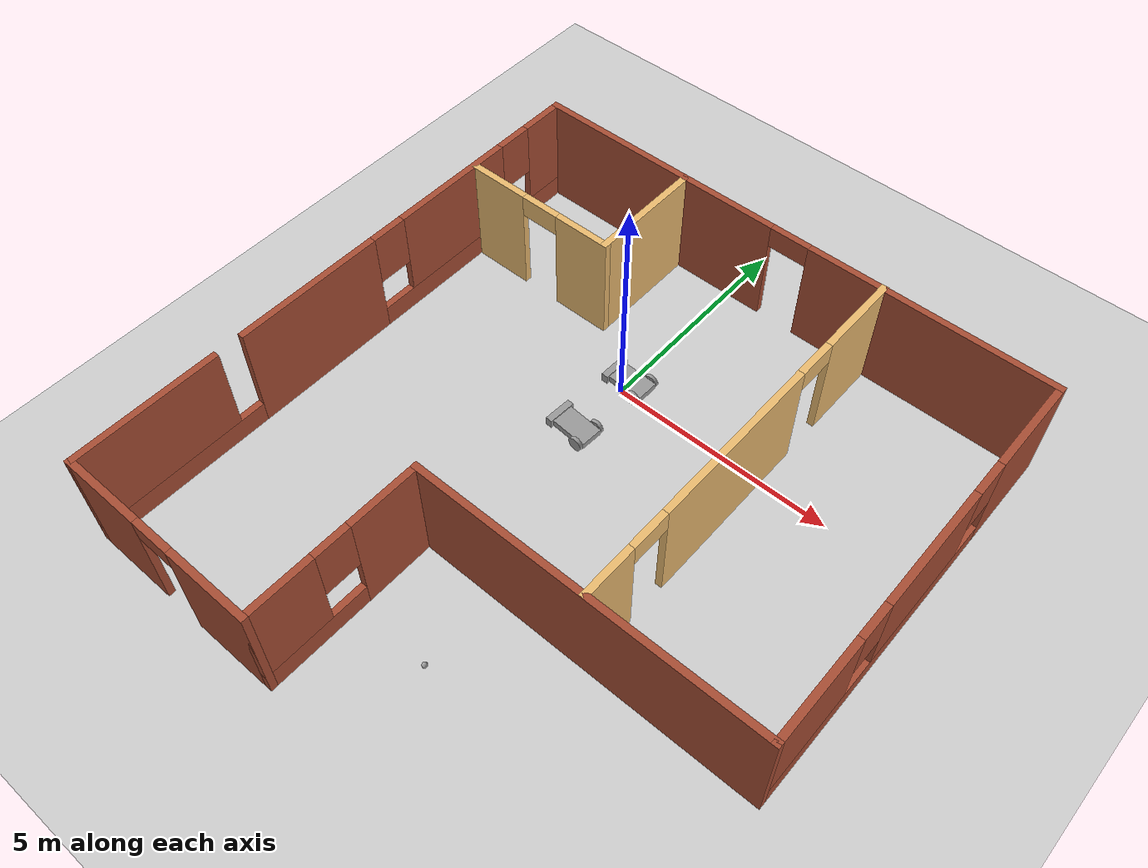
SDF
<sdf version="1.7">
 <world name="default">
  <plugin name="hello" filename="libhello.so"/>
  <light name="sun" type="directional">
   <pose>0 0 10 0 -0 0</pose>
   <diffuse>0.8 0.8 0.8 1</diffuse>
   <specular>0.2 0.2 0.2 1</specular>
   <attenuation>
    <range>1000</range>
    <constant>0.9</constant>
    <linear>0.01</linear>
    <quadratic>0.001</quadratic>
   </attenuation>
   <direction>-0.5 0.1 -0.9</direction>
   <spot><inner_angle>0</inner_angle><outer_angle>0</outer_angle><falloff>0</falloff></spot>
  </light>
  <model name="ground_plane">
   <static>1</static>
   <link name="link">
    <collision name="collision">
     <geometry><plane><normal>0 0 1</normal><size>100 100</size></plane></geometry>
     <surface>
      <contact><collide_bitmask>65535</collide_bitmask></contact>
      <friction><ode><mu>100</mu><mu2>50</mu2></ode></friction>
     </surface>
    </collision>
    <visual name="visual">
     <cast_shadows>0</cast_shadows>
     <geometry><plane><normal>0 0 1</normal><size>100 100</size></plane></geometry>
     <material>
      <script><uri>file://media/materials/scripts/gazebo.material</uri><name>Gazebo/Grey</name></script>
     </material>
    </visual>
   </link>
  </model>
  <gravity>0 0 -9.8</gravity>
  <magnetic_field>6e-06 2.3e-05 -4.2e-05</magnetic_field>
  <atmosphere type="adiabatic"/>
  <physics type="ode">
   <max_step_size>0.001</max_step_size>
   <real_time_factor>1</real_time_factor>
   <real_time_update_rate>1000</real_time_update_rate>
  </physics>
  <scene><ambient>0.4 0.4 0.4 1</ambient><background>0.7 0.7 0.7 1</background><shadows>1</shadows></scene>
  <spherical_coordinates>
   <surface_model>EARTH_WGS84</surface_model>
   <latitude_deg>0</latitude_deg>
   <longitude_deg>0</longitude_deg>
   <elevation>0</elevation>
   <heading_deg>0</heading_deg>
  </spherical_coordinates>
  <model name="building">
   <pose>1.07972 -2.64319 0 0 -0 0</pose>
   <link name="Wall_0">
    <pose>-6.1 1.91872 0 0 -0 1.5708</pose>
    <visual name="Wall_0_Visual_0">
     <pose>-2.80766 0 1.25 0 -0 0</pose>
     <geometry><box><size>3.38468 0.15 2.5</size></box></geometry>
     <material>
      <script><uri>file://media/materials/scripts/gazebo.material</uri><name>Gazebo/Bricks</name></script>
      <ambient>1 1 1 1</ambient>
     </material>
     <meta><layer>0</layer></meta>
    </visual>
    <collision name="Wall_0_Collision_0">
     <geometry><box><size>3.38468 0.15 2.5</size></box></geometry>
     <pose>-2.80766 0 1.25 0 -0 0</pose>
    </collision>
    <visual name="Wall_0_Visual_1">
     <pose>1.69234 0 0.25 0 -0 0</pose>
     <geometry><box><size>5.61532 0.15 0.5</size></box></geometry>
     <material>
      <script><uri>file://media/materials/scripts/gazebo.material</uri><name>Gazebo/Bricks</name></script>
      <ambient>1 1 1 1</ambient>
     </material>
     <meta><layer>0</layer></meta>
    </visual>
    <collision name="Wall_0_Collision_1">
     <geometry><box><size>5.61532 0.15 0.5</size></box></geometry>
     <pose>1.69234 0 0.25 0 -0 0</pose>
    </collision>
    <visual name="Wall_0_Visual_2">
     <pose>1.14475 0 1.5 0 -0 0</pose>
     <geometry><box><size>2.92014 0.15 2</size></box></geometry>
     <material>
      <script><uri>file://media/materials/scripts/gazebo.material</uri><name>Gazebo/Bricks</name></script>
      <ambient>1 1 1 1</ambient>
     </material>
     <meta><layer>0</layer></meta>
    </visual>
    <collision name="Wall_0_Collision_2">
     <geometry><box><size>2.92014 0.15 2</size></box></geometry>
     <pose>1.14475 0 1.5 0 -0 0</pose>
    </collision>
    <visual name="Wall_0_Visual_3">
     <pose>3.95241 0 1.5 0 -0 0</pose>
     <geometry><box><size>1.09518 0.15 2</size></box></geometry>
     <material>
      <script><uri>file://media/materials/scripts/gazebo.material</uri><name>Gazebo/Bricks</name></script>
      <ambient>1 1 1 1</ambient>
     </material>
     <meta><layer>0</layer></meta>
    </visual>
    <collision name="Wall_0_Collision_3">
     <geometry><box><size>1.09518 0.15 2</size></box></geometry>
     <pose>3.95241 0 1.5 0 -0 0</pose>
    </collision>
    <visual name="Wall_0_Visual_4">
     <pose>-0.71532 0 1.9 0 -0 0</pose>
     <geometry><box><size>0.8 0.15 1.2</size></box></geometry>
     <material>
      <script><uri>file://media/materials/scripts/gazebo.material</uri><name>Gazebo/Bricks</name></script>
      <ambient>1 1 1 1</ambient>
     </material>
     <meta><layer>0</layer></meta>
    </visual>
    <collision name="Wall_0_Collision_4">
     <geometry><box><size>0.8 0.15 1.2</size></box></geometry>
     <pose>-0.71532 0 1.9 0 -0 0</pose>
    </collision>
    <visual name="Wall_0_Visual_5">
     <pose>3.00482 0 1.9 0 -0 0</pose>
     <geometry><box><size>0.8 0.15 1.2</size></box></geometry>
     <material>
      <script><uri>file://media/materials/scripts/gazebo.material</uri><name>Gazebo/Bricks</name></script>
      <ambient>1 1 1 1</ambient>
     </material>
     <meta><layer>0</layer></meta>
    </visual>
    <collision name="Wall_0_Collision_5">
     <geometry><box><size>0.8 0.15 1.2</size></box></geometry>
     <pose>3.00482 0 1.9 0 -0 0</pose>
    </collision>
   </link>
   <link name="Wall_1">
    <collision name="Wall_1_Collision">
     <geometry><box><size>3.75 0.15 2.5</size></box></geometry>
     <pose>0 0 1.25 0 -0 0</pose>
    </collision>
    <visual name="Wall_1_Visual">
     <pose>0 0 1.25 0 -0 0</pose>
     <geometry><box><size>3.75 0.15 2.5</size></box></geometry>
     <material>
      <script><uri>file://media/materials/scripts/gazebo.material</uri><name>Gazebo/Bricks</name></script>
      <ambient>1 1 1 1</ambient>
     </material>
     <meta><layer>0</layer></meta>
    </visual>
    <pose>-4.3 6.34372 0 0 -0 0</pose>
   </link>
   <link name="Wall_16">
    <pose>-6.1 -4.43128 0 0 -0 -1.5708</pose>
    <visual name="Wall_16_Visual_0">
     <pose>0 0 0.25 0 -0 0</pose>
     <geometry><box><size>4 0.15 0.5</size></box></geometry>
     <material>
      <script><uri>file://media/materials/scripts/gazebo.material</uri><name>Gazebo/Bricks</name></script>
      <ambient>1 1 1 1</ambient>
     </material>
     <meta><layer>0</layer></meta>
    </visual>
    <collision name="Wall_16_Collision_0">
     <geometry><box><size>4 0.15 0.5</size></box></geometry>
     <pose>0 0 0.25 0 -0 0</pose>
    </collision>
    <visual name="Wall_16_Visual_1">
     <pose>0.35573 0 1.5 0 -0 0</pose>
     <geometry><box><size>3.28854 0.15 2</size></box></geometry>
     <material>
      <script><uri>file://media/materials/scripts/gazebo.material</uri><name>Gazebo/Bricks</name></script>
      <ambient>1 1 1 1</ambient>
     </material>
     <meta><layer>0</layer></meta>
    </visual>
    <collision name="Wall_16_Collision_1">
     <geometry><box><size>3.28854 0.15 2</size></box></geometry>
     <pose>0.35573 0 1.5 0 -0 0</pose>
    </collision>
   </link>
   <link name="Wall_17">
    <pose>-3.8 -6.35628 0 0 -0 0</pose>
    <visual name="Wall_17_Visual_0">
     <pose>-1.42127 0 1.25 0 -0 0</pose>
     <geometry><box><size>1.90746 0.15 2.5</size></box></geometry>
     <material>
      <script><uri>file://media/materials/scripts/gazebo.material</uri><name>Gazebo/Bricks</name></script>
      <ambient>1 1 1 1</ambient>
     </material>
     <meta><layer>0</layer></meta>
    </visual>
    <collision name="Wall_17_Collision_0">
     <geometry><box><size>1.90746 0.15 2.5</size></box></geometry>
     <pose>-1.42127 0 1.25 0 -0 0</pose>
    </collision>
    <visual name="Wall_17_Visual_1">
     <pose>1.40373 0 1.25 0 -0 0</pose>
     <geometry><box><size>1.94254 0.15 2.5</size></box></geometry>
     <material>
      <script><uri>file://media/materials/scripts/gazebo.material</uri><name>Gazebo/Bricks</name></script>
      <ambient>1 1 1 1</ambient>
     </material>
     <meta><layer>0</layer></meta>
    </visual>
    <collision name="Wall_17_Collision_1">
     <geometry><box><size>1.94254 0.15 2.5</size></box></geometry>
     <pose>1.40373 0 1.25 0 -0 0</pose>
    </collision>
    <visual name="Wall_17_Visual_2">
     <pose>-0.017539 0 2.25 0 -0 0</pose>
     <geometry><box><size>0.9 0.15 0.5</size></box></geometry>
     <material>
      <script><uri>file://media/materials/scripts/gazebo.material</uri><name>Gazebo/Bricks</name></script>
      <ambient>1 1 1 1</ambient>
     </material>
     <meta><layer>0</layer></meta>
    </visual>
    <collision name="Wall_17_Collision_2">
     <geometry><box><size>0.9 0.15 0.5</size></box></geometry>
     <pose>-0.017539 0 2.25 0 -0 0</pose>
    </collision>
   </link>
   <link name="Wall_19">
    <pose>2.3336 1.93128 0 0 -0 -1.5708</pose>
    <visual name="Wall_19_Visual_0">
     <pose>-3.52507 0 1.25 0 -0 0</pose>
     <geometry><box><size>1.94986 0.15 2.5</size></box></geometry>
     <material>
      <script><uri>file://media/materials/scripts/gazebo.material</uri><name>Gazebo/Grey</name></script>
      <ambient>0.913725 0.72549 0.431373 1</ambient>
     </material>
     <meta><layer>0</layer></meta>
    </visual>
    <collision name="Wall_19_Collision_0">
     <geometry><box><size>1.94986 0.15 2.5</size></box></geometry>
     <pose>-3.52507 0 1.25 0 -0 0</pose>
    </collision>
    <visual name="Wall_19_Visual_1">
     <pose>0.347076 0 1.25 0 -0 0</pose>
     <geometry><box><size>3.99444 0.15 2.5</size></box></geometry>
     <material>
      <script><uri>file://media/materials/scripts/gazebo.material</uri><name>Gazebo/Grey</name></script>
      <ambient>0.913725 0.72549 0.431373 1</ambient>
     </material>
     <meta><layer>0</layer></meta>
    </visual>
    <collision name="Wall_19_Collision_1">
     <geometry><box><size>3.99444 0.15 2.5</size></box></geometry>
     <pose>0.347076 0 1.25 0 -0 0</pose>
    </collision>
    <visual name="Wall_19_Visual_2">
     <pose>3.87215 0 1.25 0 -0 0</pose>
     <geometry><box><size>1.25571 0.15 2.5</size></box></geometry>
     <material>
      <script><uri>file://media/materials/scripts/gazebo.material</uri><name>Gazebo/Grey</name></script>
      <ambient>0.913725 0.72549 0.431373 1</ambient>
     </material>
     <meta><layer>0</layer></meta>
    </visual>
    <collision name="Wall_19_Collision_2">
     <geometry><box><size>1.25571 0.15 2.5</size></box></geometry>
     <pose>3.87215 0 1.25 0 -0 0</pose>
    </collision>
    <visual name="Wall_19_Visual_3">
     <pose>-2.10014 0 2.25 0 -0 0</pose>
     <geometry><box><size>0.9 0.15 0.5</size></box></geometry>
     <material>
      <script><uri>file://media/materials/scripts/gazebo.material</uri><name>Gazebo/Grey</name></script>
      <ambient>0.913725 0.72549 0.431373 1</ambient>
     </material>
     <meta><layer>0</layer></meta>
    </visual>
    <collision name="Wall_19_Collision_3">
     <geometry><box><size>0.9 0.15 0.5</size></box></geometry>
     <pose>-2.10014 0 2.25 0 -0 0</pose>
    </collision>
    <visual name="Wall_19_Visual_4">
     <pose>2.79429 0 2.25 0 -0 0</pose>
     <geometry><box><size>0.9 0.15 0.5</size></box></geometry>
     <material>
      <script><uri>file://media/materials/scripts/gazebo.material</uri><name>Gazebo/Grey</name></script>
      <ambient>0.913725 0.72549 0.431373 1</ambient>
     </material>
     <meta><layer>0</layer></meta>
    </visual>
    <collision name="Wall_19_Collision_4">
     <geometry><box><size>0.9 0.15 0.5</size></box></geometry>
     <pose>2.79429 0 2.25 0 -0 0</pose>
    </collision>
   </link>
   <link name="Wall_2">
    <collision name="Wall_2_Collision">
     <geometry><box><size>2.75 0.15 2.5</size></box></geometry>
     <pose>0 0 1.25 0 -0 0</pose>
    </collision>
    <visual name="Wall_2_Visual">
     <pose>0 0 1.25 0 -0 0</pose>
     <geometry><box><size>2.75 0.15 2.5</size></box></geometry>
     <material>
      <script><uri>file://media/materials/scripts/gazebo.material</uri><name>Gazebo/Grey</name></script>
      <ambient>0.913725 0.72549 0.431373 1</ambient>
     </material>
     <meta><layer>0</layer></meta>
    </visual>
    <pose>-2.5 5.04372 0 0 -0 -1.5708</pose>
   </link>
   <link name="Wall_3">
    <pose>-4.3 3.74372 0 0 -0 3.14159</pose>
    <visual name="Wall_3_Visual_0">
     <pose>-1.20615 0 1.25 0 -0 0</pose>
     <geometry><box><size>1.33771 0.15 2.5</size></box></geometry>
     <material>
      <script><uri>file://media/materials/scripts/gazebo.material</uri><name>Gazebo/Grey</name></script>
      <ambient>0.913725 0.72549 0.431373 1</ambient>
     </material>
     <meta><layer>0</layer></meta>
    </visual>
    <collision name="Wall_3_Collision_0">
     <geometry><box><size>1.33771 0.15 2.5</size></box></geometry>
     <pose>-1.20615 0 1.25 0 -0 0</pose>
    </collision>
    <visual name="Wall_3_Visual_1">
     <pose>1.11885 0 1.25 0 -0 0</pose>
     <geometry><box><size>1.51229 0.15 2.5</size></box></geometry>
     <material>
      <script><uri>file://media/materials/scripts/gazebo.material</uri><name>Gazebo/Grey</name></script>
      <ambient>0.913725 0.72549 0.431373 1</ambient>
     </material>
     <meta><layer>0</layer></meta>
    </visual>
    <collision name="Wall_3_Collision_1">
     <geometry><box><size>1.51229 0.15 2.5</size></box></geometry>
     <pose>1.11885 0 1.25 0 -0 0</pose>
    </collision>
    <visual name="Wall_3_Visual_2">
     <pose>-0.087293 0 2.25 0 -0 0</pose>
     <geometry><box><size>0.9 0.15 0.5</size></box></geometry>
     <material>
      <script><uri>file://media/materials/scripts/gazebo.material</uri><name>Gazebo/Grey</name></script>
      <ambient>0.913725 0.72549 0.431373 1</ambient>
     </material>
     <meta><layer>0</layer></meta>
    </visual>
    <collision name="Wall_3_Collision_2">
     <geometry><box><size>0.9 0.15 0.5</size></box></geometry>
     <pose>-0.087293 0 2.25 0 -0 0</pose>
    </collision>
   </link>
   <link name="Wall_5">
    <pose>1.8 6.34372 0 0 -0 0</pose>
    <visual name="Wall_5_Visual_0">
     <pose>-3.22478 0 1.25 0 -0 0</pose>
     <geometry><box><size>2.30044 0.15 2.5</size></box></geometry>
     <material>
      <script><uri>file://media/materials/scripts/gazebo.material</uri><name>Gazebo/Bricks</name></script>
      <ambient>1 1 1 1</ambient>
     </material>
     <meta><layer>0</layer></meta>
    </visual>
    <collision name="Wall_5_Collision_0">
     <geometry><box><size>2.30044 0.15 2.5</size></box></geometry>
     <pose>-3.22478 0 1.25 0 -0 0</pose>
    </collision>
    <visual name="Wall_5_Visual_1">
     <pose>1.60022 0 1.25 0 -0 0</pose>
     <geometry><box><size>5.54956 0.15 2.5</size></box></geometry>
     <material>
      <script><uri>file://media/materials/scripts/gazebo.material</uri><name>Gazebo/Bricks</name></script>
      <ambient>1 1 1 1</ambient>
     </material>
     <meta><layer>0</layer></meta>
    </visual>
    <collision name="Wall_5_Collision_1">
     <geometry><box><size>5.54956 0.15 2.5</size></box></geometry>
     <pose>1.60022 0 1.25 0 -0 0</pose>
    </collision>
    <visual name="Wall_5_Visual_2">
     <pose>-1.62456 0 2.25 0 -0 0</pose>
     <geometry><box><size>0.9 0.15 0.5</size></box></geometry>
     <material>
      <script><uri>file://media/materials/scripts/gazebo.material</uri><name>Gazebo/Bricks</name></script>
      <ambient>1 1 1 1</ambient>
     </material>
     <meta><layer>0</layer></meta>
    </visual>
    <collision name="Wall_5_Collision_2">
     <geometry><box><size>0.9 0.15 0.5</size></box></geometry>
     <pose>-1.62456 0 2.25 0 -0 0</pose>
    </collision>
   </link>
   <link name="Wall_6">
    <pose>6.1 1.91872 0 0 -0 -1.5708</pose>
    <visual name="Wall_6_Visual_0">
     <pose>-3.37414 0 1.25 0 -0 0</pose>
     <geometry><box><size>2.25171 0.15 2.5</size></box></geometry>
     <material>
      <script><uri>file://media/materials/scripts/gazebo.material</uri><name>Gazebo/Bricks</name></script>
      <ambient>1 1 1 1</ambient>
     </material>
     <meta><layer>0</layer></meta>
    </visual>
    <collision name="Wall_6_Collision_0">
     <geometry><box><size>2.25171 0.15 2.5</size></box></geometry>
     <pose>-3.37414 0 1.25 0 -0 0</pose>
    </collision>
    <visual name="Wall_6_Visual_1">
     <pose>1.12586 0 0.25 0 -0 0</pose>
     <geometry><box><size>6.74829 0.15 0.5</size></box></geometry>
     <material>
      <script><uri>file://media/materials/scripts/gazebo.material</uri><name>Gazebo/Bricks</name></script>
      <ambient>1 1 1 1</ambient>
     </material>
     <meta><layer>0</layer></meta>
    </visual>
    <collision name="Wall_6_Collision_1">
     <geometry><box><size>6.74829 0.15 0.5</size></box></geometry>
     <pose>1.12586 0 0.25 0 -0 0</pose>
    </collision>
    <visual name="Wall_6_Visual_2">
     <pose>-0.044099 0 1.5 0 -0 0</pose>
     <geometry><box><size>2.80837 0.15 2</size></box></geometry>
     <material>
      <script><uri>file://media/materials/scripts/gazebo.material</uri><name>Gazebo/Bricks</name></script>
      <ambient>1 1 1 1</ambient>
     </material>
     <meta><layer>0</layer></meta>
    </visual>
    <collision name="Wall_6_Collision_2">
     <geometry><box><size>2.80837 0.15 2</size></box></geometry>
     <pose>-0.044099 0 1.5 0 -0 0</pose>
    </collision>
    <visual name="Wall_6_Visual_3">
     <pose>3.33004 0 1.5 0 -0 0</pose>
     <geometry><box><size>2.33991 0.15 2</size></box></geometry>
     <material>
      <script><uri>file://media/materials/scripts/gazebo.material</uri><name>Gazebo/Bricks</name></script>
      <ambient>1 1 1 1</ambient>
     </material>
     <meta><layer>0</layer></meta>
    </visual>
    <collision name="Wall_6_Collision_3">
     <geometry><box><size>2.33991 0.15 2</size></box></geometry>
     <pose>3.33004 0 1.5 0 -0 0</pose>
    </collision>
    <visual name="Wall_6_Visual_4">
     <pose>-1.84829 0 1.9 0 -0 0</pose>
     <geometry><box><size>0.8 0.15 1.2</size></box></geometry>
     <material>
      <script><uri>file://media/materials/scripts/gazebo.material</uri><name>Gazebo/Bricks</name></script>
      <ambient>1 1 1 1</ambient>
     </material>
     <meta><layer>0</layer></meta>
    </visual>
    <collision name="Wall_6_Collision_4">
     <geometry><box><size>0.8 0.15 1.2</size></box></geometry>
     <pose>-1.84829 0 1.9 0 -0 0</pose>
    </collision>
    <visual name="Wall_6_Visual_5">
     <pose>1.76009 0 1.9 0 -0 0</pose>
     <geometry><box><size>0.8 0.15 1.2</size></box></geometry>
     <material>
      <script><uri>file://media/materials/scripts/gazebo.material</uri><name>Gazebo/Bricks</name></script>
      <ambient>1 1 1 1</ambient>
     </material>
     <meta><layer>0</layer></meta>
    </visual>
    <collision name="Wall_6_Collision_5">
     <geometry><box><size>0.8 0.15 1.2</size></box></geometry>
     <pose>1.76009 0 1.9 0 -0 0</pose>
    </collision>
   </link>
   <link name="Wall_7">
    <collision name="Wall_7_Collision">
     <geometry><box><size>7.75 0.15 2.5</size></box></geometry>
     <pose>0 0 1.25 0 -0 0</pose>
    </collision>
    <visual name="Wall_7_Visual">
     <pose>0 0 1.25 0 -0 0</pose>
     <geometry><box><size>7.75 0.15 2.5</size></box></geometry>
     <material>
      <script><uri>file://media/materials/scripts/gazebo.material</uri><name>Gazebo/Bricks</name></script>
      <ambient>1 1 1 1</ambient>
     </material>
     <meta><layer>0</layer></meta>
    </visual>
    <pose>2.3 -2.50628 0 0 -0 3.14159</pose>
   </link>
   <link name="Wall_8">
    <pose>-1.5 -4.43128 0 0 -0 -1.5708</pose>
    <visual name="Wall_8_Visual_0">
     <pose>-1.17245 0 1.25 0 -0 0</pose>
     <geometry><box><size>1.6551 0.15 2.5</size></box></geometry>
     <material>
      <script><uri>file://media/materials/scripts/gazebo.material</uri><name>Gazebo/Bricks</name></script>
      <ambient>1 1 1 1</ambient>
     </material>
     <meta><layer>0</layer></meta>
    </visual>
    <collision name="Wall_8_Collision_0">
     <geometry><box><size>1.6551 0.15 2.5</size></box></geometry>
     <pose>-1.17245 0 1.25 0 -0 0</pose>
    </collision>
    <visual name="Wall_8_Visual_1">
     <pose>0.827551 0 0.25 0 -0 0</pose>
     <geometry><box><size>2.3449 0.15 0.5</size></box></geometry>
     <material>
      <script><uri>file://media/materials/scripts/gazebo.material</uri><name>Gazebo/Bricks</name></script>
      <ambient>1 1 1 1</ambient>
     </material>
     <meta><layer>0</layer></meta>
    </visual>
    <collision name="Wall_8_Collision_1">
     <geometry><box><size>2.3449 0.15 0.5</size></box></geometry>
     <pose>0.827551 0 0.25 0 -0 0</pose>
    </collision>
    <visual name="Wall_8_Visual_2">
     <pose>1.22755 0 1.5 0 -0 0</pose>
     <geometry><box><size>1.5449 0.15 2</size></box></geometry>
     <material>
      <script><uri>file://media/materials/scripts/gazebo.material</uri><name>Gazebo/Bricks</name></script>
      <ambient>1 1 1 1</ambient>
     </material>
     <meta><layer>0</layer></meta>
    </visual>
    <collision name="Wall_8_Collision_2">
     <geometry><box><size>1.5449 0.15 2</size></box></geometry>
     <pose>1.22755 0 1.5 0 -0 0</pose>
    </collision>
    <visual name="Wall_8_Visual_3">
     <pose>0.055102 0 1.9 0 -0 0</pose>
     <geometry><box><size>0.8 0.15 1.2</size></box></geometry>
     <material>
      <script><uri>file://media/materials/scripts/gazebo.material</uri><name>Gazebo/Bricks</name></script>
      <ambient>1 1 1 1</ambient>
     </material>
     <meta><layer>0</layer></meta>
    </visual>
    <collision name="Wall_8_Collision_3">
     <geometry><box><size>0.8 0.15 1.2</size></box></geometry>
     <pose>0.055102 0 1.9 0 -0 0</pose>
    </collision>
   </link>
   <static>1</static>
  </model>
  <model name="robot_0">
   <link name="link_0">
    <inertial>
     <mass>0.0632012</mass>
     <inertia>
      <ixx>0.00146993</ixx>
      <ixy>0</ixy>
      <ixz>0</ixz>
      <iyy>0.0037015</iyy>
      <iyz>0</iyz>
      <izz>0.00493017</izz>
     </inertia>
    </inertial>
    <pose>0.076898 -0.380268 0.043134 0 -0 0</pose>
    <visual name="visual">
     <geometry><box><size>0.82456 0.506153 0.151341</size></box></geometry>
     <material>
      <lighting>1</lighting>
      <script><uri>file://media/materials/scripts/gazebo.material</uri><name>Gazebo/Grey</name></script>
      <shader type="pixel"/>
      <emissive>0 0 0 1</emissive>
     </material>
    </visual>
    <collision name="collision">
     <geometry><box><size>0.82456 0.506153 0.151341</size></box></geometry>
     <surface>
      <friction>
       <ode><mu>1</mu><mu2>1</mu2><fdir1>0 0 0</fdir1><slip1>0</slip1><slip2>0</slip2></ode>
       <torsional>
        <coefficient>1</coefficient>
        <patch_radius>0</patch_radius>
        <surface_radius>0</surface_radius>
        <use_patch_radius>1</use_patch_radius>
        <ode><slip>0</slip></ode>
       </torsional>
      </friction>
      <bounce><restitution_coefficient>0</restitution_coefficient><threshold>1e+06</threshold></bounce>
      <contact>
       <collide_without_contact>0</collide_without_contact>
       <collide_without_contact_bitmask>1</collide_without_contact_bitmask>
       <collide_bitmask>1</collide_bitmask>
       <ode>
        <soft_cfm>0</soft_cfm>
        <soft_erp>0.2</soft_erp>
        <kp>1e+13</kp>
        <kd>1</kd>
        <max_vel>0.01</max_vel>
        <min_depth>0</min_depth>
       </ode>
       <bullet>
        <split_impulse>1</split_impulse>
        <split_impulse_penetration_threshold>-0.01</split_impulse_penetration_threshold>
        <soft_cfm>0</soft_cfm>
        <soft_erp>0.2</soft_erp>
        <kp>1e+13</kp>
        <kd>1</kd>
       </bullet>
      </contact>
     </surface>
    </collision>
   </link>
   <link name="link_1">
    <inertial>
     <mass>0.00808714</mass>
     <inertia>
      <ixx>5.47359e-05</ixx>
      <ixy>0</ixy>
      <ixz>0</ixz>
      <iyy>5.47359e-05</iyy>
      <iyz>0</iyz>
      <izz>0.000100559</izz>
     </inertia>
    </inertial>
    <pose>0.331479 -0.086517 0.043134 0 -0 0</pose>
    <visual name="visual">
     <pose>0 0 0 1.5707 -0 0</pose>
     <geometry><cylinder><radius>0.157698</radius><length>0.0813189</length></cylinder></geometry>
     <material>
      <lighting>1</lighting>
      <script><uri>file://media/materials/scripts/gazebo.material</uri><name>Gazebo/Grey</name></script>
      <shader type="pixel"><normal_map>__default__</normal_map></shader>
      <ambient>0.3 0.3 0.3 1</ambient>
      <diffuse>0.7 0.7 0.7 1</diffuse>
      <specular>0.01 0.01 0.01 1</specular>
      <emissive>0 0 0 1</emissive>
     </material>
    </visual>
    <collision name="collision">
     <pose>0 0 0 1.5707 -0 0</pose>
     <geometry><cylinder><radius>0.157698</radius><length>0.081319</length></cylinder></geometry>
     <surface>
      <friction>
       <ode><mu>1</mu><mu2>1</mu2><fdir1>0 0 0</fdir1><slip1>0</slip1><slip2>0</slip2></ode>
       <torsional>
        <coefficient>1</coefficient>
        <patch_radius>0</patch_radius>
        <surface_radius>0</surface_radius>
        <use_patch_radius>1</use_patch_radius>
        <ode><slip>0</slip></ode>
       </torsional>
      </friction>
      <bounce><restitution_coefficient>0</restitution_coefficient><threshold>1e+06</threshold></bounce>
      <contact>
       <collide_without_contact>0</collide_without_contact>
       <collide_without_contact_bitmask>1</collide_without_contact_bitmask>
       <collide_bitmask>1</collide_bitmask>
       <ode>
        <soft_cfm>0</soft_cfm>
        <soft_erp>0.2</soft_erp>
        <kp>1e+13</kp>
        <kd>1</kd>
        <max_vel>0.01</max_vel>
        <min_depth>0</min_depth>
       </ode>
       <bullet>
        <split_impulse>1</split_impulse>
        <split_impulse_penetration_threshold>-0.01</split_impulse_penetration_threshold>
        <soft_cfm>0</soft_cfm>
        <soft_erp>0.2</soft_erp>
        <kp>1e+13</kp>
        <kd>1</kd>
       </bullet>
      </contact>
     </surface>
    </collision>
   </link>
   <link name="link_1_clone">
    <inertial>
     <mass>0.00808714</mass>
     <inertia>
      <ixx>5.47359e-05</ixx>
      <ixy>0</ixy>
      <ixz>0</ixz>
      <iyy>5.47359e-05</iyy>
      <iyz>0</iyz>
      <izz>0.000100559</izz>
     </inertia>
    </inertial>
    <pose>0.33148 -0.67402 0.043134 0 -0 0</pose>
    <visual name="visual">
     <pose>0 0 0 1.5707 -0 0</pose>
     <geometry><cylinder><radius>0.157698</radius><length>0.0813189</length></cylinder></geometry>
     <material>
      <lighting>1</lighting>
      <script><uri>file://media/materials/scripts/gazebo.material</uri><name>Gazebo/Grey</name></script>
      <shader type="pixel"><normal_map>__default__</normal_map></shader>
      <ambient>0.3 0.3 0.3 1</ambient>
      <diffuse>0.7 0.7 0.7 1</diffuse>
      <specular>0.01 0.01 0.01 1</specular>
      <emissive>0 0 0 1</emissive>
     </material>
    </visual>
    <collision name="collision">
     <pose>0 0 0 1.5707 -0 0</pose>
     <geometry><cylinder><radius>0.157698</radius><length>0.081319</length></cylinder></geometry>
     <surface>
      <friction>
       <ode><mu>1</mu><mu2>1</mu2><fdir1>0 0 0</fdir1><slip1>0</slip1><slip2>0</slip2></ode>
       <torsional>
        <coefficient>1</coefficient>
        <patch_radius>0</patch_radius>
        <surface_radius>0</surface_radius>
        <use_patch_radius>1</use_patch_radius>
        <ode><slip>0</slip></ode>
       </torsional>
      </friction>
      <bounce><restitution_coefficient>0</restitution_coefficient><threshold>1e+06</threshold></bounce>
      <contact>
       <collide_without_contact>0</collide_without_contact>
       <collide_without_contact_bitmask>1</collide_without_contact_bitmask>
       <collide_bitmask>1</collide_bitmask>
       <ode>
        <soft_cfm>0</soft_cfm>
        <soft_erp>0.2</soft_erp>
        <kp>1e+13</kp>
        <kd>1</kd>
        <max_vel>0.01</max_vel>
        <min_depth>0</min_depth>
       </ode>
       <bullet>
        <split_impulse>1</split_impulse>
        <split_impulse_penetration_threshold>-0.01</split_impulse_penetration_threshold>
        <soft_cfm>0</soft_cfm>
        <soft_erp>0.2</soft_erp>
        <kp>1e+13</kp>
        <kd>1</kd>
       </bullet>
      </contact>
     </surface>
    </collision>
   </link>
   <link name="link_2">
    <inertial>
     <mass>0.0028514</mass>
     <inertia>
      <ixx>5.73493e-06</ixx>
      <ixy>0</ixy>
      <ixz>0</ixz>
      <iyy>5.73493e-06</iyy>
      <iyz>0</iyz>
      <izz>5.73493e-06</izz>
     </inertia>
    </inertial>
    <pose>-0.264473 -0.414813 -0.062536 0 -0 0</pose>
    <visual name="visual">
     <geometry><sphere><radius>0.0709096</radius></sphere></geometry>
     <material>
      <lighting>1</lighting>
      <script><uri>file://media/materials/scripts/gazebo.material</uri><name>Gazebo/Grey</name></script>
      <shader type="pixel"/>
      <emissive>0 0 0 1</emissive>
     </material>
    </visual>
    <collision name="collision">
     <geometry><sphere><radius>0.07091</radius></sphere></geometry>
     <surface>
      <friction>
       <ode><mu>1</mu><mu2>1</mu2><fdir1>0 0 0</fdir1><slip1>0</slip1><slip2>0</slip2></ode>
       <torsional>
        <coefficient>1</coefficient>
        <patch_radius>0</patch_radius>
        <surface_radius>0</surface_radius>
        <use_patch_radius>1</use_patch_radius>
        <ode><slip>0</slip></ode>
       </torsional>
      </friction>
      <bounce><restitution_coefficient>0</restitution_coefficient><threshold>1e+06</threshold></bounce>
      <contact>
       <collide_without_contact>0</collide_without_contact>
       <collide_without_contact_bitmask>1</collide_without_contact_bitmask>
       <collide_bitmask>1</collide_bitmask>
       <ode>
        <soft_cfm>0</soft_cfm>
        <soft_erp>0.2</soft_erp>
        <kp>1e+13</kp>
        <kd>1</kd>
        <max_vel>0.01</max_vel>
        <min_depth>0</min_depth>
       </ode>
       <bullet>
        <split_impulse>1</split_impulse>
        <split_impulse_penetration_threshold>-0.01</split_impulse_penetration_threshold>
        <soft_cfm>0</soft_cfm>
        <soft_erp>0.2</soft_erp>
        <kp>1e+13</kp>
        <kd>1</kd>
       </bullet>
      </contact>
     </surface>
    </collision>
   </link>
   <link name="link_3">
    <inertial>
     <mass>0.0194487</mass>
     <inertia>
      <ixx>0.000711835</ixx>
      <ixy>0</ixy>
      <ixz>0</ixz>
      <iyy>0.000106769</iyy>
      <iyz>0</iyz>
      <izz>0.000675447</izz>
     </inertia>
    </inertial>
    <pose>-0.405382 -0.380268 0.043134 0 -0 0</pose>
    <visual name="visual">
     <geometry><box><size>0.147353 0.628525 0.210154</size></box></geometry>
     <material>
      <lighting>1</lighting>
      <script><uri>file://media/materials/scripts/gazebo.material</uri><name>Gazebo/Grey</name></script>
      <shader type="pixel"/>
      <emissive>0 0 0 1</emissive>
     </material>
    </visual>
    <collision name="collision">
     <geometry><box><size>0.147353 0.628525 0.210154</size></box></geometry>
     <surface>
      <friction>
       <ode><mu>1</mu><mu2>1</mu2><fdir1>0 0 0</fdir1><slip1>0</slip1><slip2>0</slip2></ode>
       <torsional>
        <coefficient>1</coefficient>
        <patch_radius>0</patch_radius>
        <surface_radius>0</surface_radius>
        <use_patch_radius>1</use_patch_radius>
        <ode><slip>0</slip></ode>
       </torsional>
      </friction>
      <bounce><restitution_coefficient>0</restitution_coefficient><threshold>1e+06</threshold></bounce>
      <contact>
       <collide_without_contact>0</collide_without_contact>
       <collide_without_contact_bitmask>1</collide_without_contact_bitmask>
       <collide_bitmask>1</collide_bitmask>
       <ode>
        <soft_cfm>0</soft_cfm>
        <soft_erp>0.2</soft_erp>
        <kp>1e+13</kp>
        <kd>1</kd>
        <max_vel>0.01</max_vel>
        <min_depth>0</min_depth>
       </ode>
       <bullet>
        <split_impulse>1</split_impulse>
        <split_impulse_penetration_threshold>-0.01</split_impulse_penetration_threshold>
        <soft_cfm>0</soft_cfm>
        <soft_erp>0.2</soft_erp>
        <kp>1e+13</kp>
        <kd>1</kd>
       </bullet>
      </contact>
     </surface>
    </collision>
   </link>
   <joint name="link_0_JOINT_1" type="revolute">
    <parent>link_0</parent>
    <child>link_1</child>
    <axis>
     <xyz>-0 -1 -0</xyz>
     <limit>
      <lower>-1.79769e+308</lower>
      <upper>1.79769e+308</upper>
      <effort>-1</effort>
      <velocity>-1</velocity>
     </limit>
     <dynamics>
      <spring_reference>0</spring_reference>
      <spring_stiffness>0</spring_stiffness>
      <damping>0</damping>
     </dynamics>
    </axis>
    <physics>
     <ode><limit><cfm>0</cfm><erp>0.2</erp></limit><suspension><cfm>0</cfm><erp>0.2</erp></suspension></ode>
    </physics>
   </joint>
   <joint name="link_0_JOINT_2" type="revolute">
    <parent>link_0</parent>
    <child>link_1_clone</child>
    <axis>
     <xyz>0 1 0</xyz>
     <limit>
      <lower>-1.79769e+308</lower>
      <upper>1.79769e+308</upper>
      <effort>-1</effort>
      <velocity>-1</velocity>
     </limit>
     <dynamics>
      <spring_reference>0</spring_reference>
      <spring_stiffness>0</spring_stiffness>
      <damping>0</damping>
     </dynamics>
    </axis>
    <physics>
     <ode><limit><cfm>0</cfm><erp>0.2</erp></limit><suspension><cfm>0</cfm><erp>0.2</erp></suspension></ode>
    </physics>
   </joint>
   <joint name="link_0_JOINT_4" type="ball">
    <parent>link_0</parent>
    <child>link_2</child>
    <physics>
     <ode><limit><cfm>0</cfm><erp>0.2</erp></limit><suspension><cfm>0</cfm><erp>0.2</erp></suspension></ode>
    </physics>
   </joint>
   <joint name="link_0_JOINT_5" type="fixed">
    <parent>link_0</parent>
    <child>link_3</child>
    <physics>
     <ode><limit><cfm>0</cfm><erp>0.2</erp></limit><suspension><cfm>0</cfm><erp>0.2</erp></suspension></ode>
    </physics>
   </joint>
   <static>0</static>
   <pose>0.026678 0.607487 0.12506 7e-06 0.031592 -0.022672</pose>
  </model>
  <model name="robot_1">
   <link name="link_0">
    <inertial>
     <mass>0.0632012</mass>
     <inertia>
      <ixx>0.00146993</ixx>
      <ixy>0</ixy>
      <ixz>0</ixz>
      <iyy>0.0037015</iyy>
      <iyz>0</iyz>
      <izz>0.00493017</izz>
     </inertia>
    </inertial>
    <pose>0.076898 -0.380268 0.043134 0 -0 0</pose>
    <visual name="visual">
     <geometry><box><size>0.82456 0.506153 0.151341</size></box></geometry>
     <material>
      <lighting>1</lighting>
      <script><uri>file://media/materials/scripts/gazebo.material</uri><name>Gazebo/Grey</name></script>
      <shader type="pixel"/>
      <emissive>0 0 0 1</emissive>
     </material>
    </visual>
    <collision name="collision">
     <geometry><box><size>0.82456 0.506153 0.151341</size></box></geometry>
     <surface>
      <friction>
       <ode><mu>1</mu><mu2>1</mu2><fdir1>0 0 0</fdir1><slip1>0</slip1><slip2>0</slip2></ode>
       <torsional>
        <coefficient>1</coefficient>
        <patch_radius>0</patch_radius>
        <surface_radius>0</surface_radius>
        <use_patch_radius>1</use_patch_radius>
        <ode><slip>0</slip></ode>
       </torsional>
      </friction>
      <bounce><restitution_coefficient>0</restitution_coefficient><threshold>1e+06</threshold></bounce>
      <contact>
       <collide_without_contact>0</collide_without_contact>
       <collide_without_contact_bitmask>1</collide_without_contact_bitmask>
       <collide_bitmask>1</collide_bitmask>
       <ode>
        <soft_cfm>0</soft_cfm>
        <soft_erp>0.2</soft_erp>
        <kp>1e+13</kp>
        <kd>1</kd>
        <max_vel>0.01</max_vel>
        <min_depth>0</min_depth>
       </ode>
       <bullet>
        <split_impulse>1</split_impulse>
        <split_impulse_penetration_threshold>-0.01</split_impulse_penetration_threshold>
        <soft_cfm>0</soft_cfm>
        <soft_erp>0.2</soft_erp>
        <kp>1e+13</kp>
        <kd>1</kd>
       </bullet>
      </contact>
     </surface>
    </collision>
   </link>
   <link name="link_1">
    <inertial>
     <mass>0.00808714</mass>
     <inertia>
      <ixx>5.47359e-05</ixx>
      <ixy>0</ixy>
      <ixz>0</ixz>
      <iyy>5.47359e-05</iyy>
      <iyz>0</iyz>
      <izz>0.000100559</izz>
     </inertia>
    </inertial>
    <pose>0.331479 -0.086517 0.043134 0 -0 0</pose>
    <visual name="visual">
     <pose>0 0 0 1.5707 -0 0</pose>
     <geometry><cylinder><radius>0.157698</radius><length>0.0813189</length></cylinder></geometry>
     <material>
      <lighting>1</lighting>
      <script><uri>file://media/materials/scripts/gazebo.material</uri><name>Gazebo/Grey</name></script>
      <shader type="pixel"><normal_map>__default__</normal_map></shader>
      <ambient>0.3 0.3 0.3 1</ambient>
      <diffuse>0.7 0.7 0.7 1</diffuse>
      <specular>0.01 0.01 0.01 1</specular>
      <emissive>0 0 0 1</emissive>
     </material>
    </visual>
    <collision name="collision">
     <pose>0 0 0 1.5707 -0 0</pose>
     <geometry><cylinder><radius>0.157698</radius><length>0.081319</length></cylinder></geometry>
     <surface>
      <friction>
       <ode><mu>1</mu><mu2>1</mu2><fdir1>0 0 0</fdir1><slip1>0</slip1><slip2>0</slip2></ode>
       <torsional>
        <coefficient>1</coefficient>
        <patch_radius>0</patch_radius>
        <surface_radius>0</surface_radius>
        <use_patch_radius>1</use_patch_radius>
        <ode><slip>0</slip></ode>
       </torsional>
      </friction>
      <bounce><restitution_coefficient>0</restitution_coefficient><threshold>1e+06</threshold></bounce>
      <contact>
       <collide_without_contact>0</collide_without_contact>
       <collide_without_contact_bitmask>1</collide_without_contact_bitmask>
       <collide_bitmask>1</collide_bitmask>
       <ode>
        <soft_cfm>0</soft_cfm>
        <soft_erp>0.2</soft_erp>
        <kp>1e+13</kp>
        <kd>1</kd>
        <max_vel>0.01</max_vel>
        <min_depth>0</min_depth>
       </ode>
       <bullet>
        <split_impulse>1</split_impulse>
        <split_impulse_penetration_threshold>-0.01</split_impulse_penetration_threshold>
        <soft_cfm>0</soft_cfm>
        <soft_erp>0.2</soft_erp>
        <kp>1e+13</kp>
        <kd>1</kd>
       </bullet>
      </contact>
     </surface>
    </collision>
   </link>
   <link name="link_1_clone">
    <inertial>
     <mass>0.00808714</mass>
     <inertia>
      <ixx>5.47359e-05</ixx>
      <ixy>0</ixy>
      <ixz>0</ixz>
      <iyy>5.47359e-05</iyy>
      <iyz>0</iyz>
      <izz>0.000100559</izz>
     </inertia>
    </inertial>
    <pose>0.33148 -0.67402 0.043134 0 -0 0</pose>
    <visual name="visual">
     <pose>0 0 0 1.5707 -0 0</pose>
     <geometry><cylinder><radius>0.157698</radius><length>0.0813189</length></cylinder></geometry>
     <material>
      <lighting>1</lighting>
      <script><uri>file://media/materials/scripts/gazebo.material</uri><name>Gazebo/Grey</name></script>
      <shader type="pixel"><normal_map>__default__</normal_map></shader>
      <ambient>0.3 0.3 0.3 1</ambient>
      <diffuse>0.7 0.7 0.7 1</diffuse>
      <specular>0.01 0.01 0.01 1</specular>
      <emissive>0 0 0 1</emissive>
     </material>
    </visual>
    <collision name="collision">
     <pose>0 0 0 1.5707 -0 0</pose>
     <geometry><cylinder><radius>0.157698</radius><length>0.081319</length></cylinder></geometry>
     <surface>
      <friction>
       <ode><mu>1</mu><mu2>1</mu2><fdir1>0 0 0</fdir1><slip1>0</slip1><slip2>0</slip2></ode>
       <torsional>
        <coefficient>1</coefficient>
        <patch_radius>0</patch_radius>
        <surface_radius>0</surface_radius>
        <use_patch_radius>1</use_patch_radius>
        <ode><slip>0</slip></ode>
       </torsional>
      </friction>
      <bounce><restitution_coefficient>0</restitution_coefficient><threshold>1e+06</threshold></bounce>
      <contact>
       <collide_without_contact>0</collide_without_contact>
       <collide_without_contact_bitmask>1</collide_without_contact_bitmask>
       <collide_bitmask>1</collide_bitmask>
       <ode>
        <soft_cfm>0</soft_cfm>
        <soft_erp>0.2</soft_erp>
        <kp>1e+13</kp>
        <kd>1</kd>
        <max_vel>0.01</max_vel>
        <min_depth>0</min_depth>
       </ode>
       <bullet>
        <split_impulse>1</split_impulse>
        <split_impulse_penetration_threshold>-0.01</split_impulse_penetration_threshold>
        <soft_cfm>0</soft_cfm>
        <soft_erp>0.2</soft_erp>
        <kp>1e+13</kp>
        <kd>1</kd>
       </bullet>
      </contact>
     </surface>
    </collision>
   </link>
   <link name="link_2">
    <inertial>
     <mass>0.0028514</mass>
     <inertia>
      <ixx>5.73493e-06</ixx>
      <ixy>0</ixy>
      <ixz>0</ixz>
      <iyy>5.73493e-06</iyy>
      <iyz>0</iyz>
      <izz>5.73493e-06</izz>
     </inertia>
    </inertial>
    <pose>-0.264473 -0.414813 -0.062536 0 -0 0</pose>
    <visual name="visual">
     <geometry><sphere><radius>0.0709096</radius></sphere></geometry>
     <material>
      <lighting>1</lighting>
      <script><uri>file://media/materials/scripts/gazebo.material</uri><name>Gazebo/Grey</name></script>
      <shader type="pixel"/>
      <emissive>0 0 0 1</emissive>
     </material>
    </visual>
    <collision name="collision">
     <geometry><sphere><radius>0.07091</radius></sphere></geometry>
     <surface>
      <friction>
       <ode><mu>1</mu><mu2>1</mu2><fdir1>0 0 0</fdir1><slip1>0</slip1><slip2>0</slip2></ode>
       <torsional>
        <coefficient>1</coefficient>
        <patch_radius>0</patch_radius>
        <surface_radius>0</surface_radius>
        <use_patch_radius>1</use_patch_radius>
        <ode><slip>0</slip></ode>
       </torsional>
      </friction>
      <bounce><restitution_coefficient>0</restitution_coefficient><threshold>1e+06</threshold></bounce>
      <contact>
       <collide_without_contact>0</collide_without_contact>
       <collide_without_contact_bitmask>1</collide_without_contact_bitmask>
       <collide_bitmask>1</collide_bitmask>
       <ode>
        <soft_cfm>0</soft_cfm>
        <soft_erp>0.2</soft_erp>
        <kp>1e+13</kp>
        <kd>1</kd>
        <max_vel>0.01</max_vel>
        <min_depth>0</min_depth>
       </ode>
       <bullet>
        <split_impulse>1</split_impulse>
        <split_impulse_penetration_threshold>-0.01</split_impulse_penetration_threshold>
        <soft_cfm>0</soft_cfm>
        <soft_erp>0.2</soft_erp>
        <kp>1e+13</kp>
        <kd>1</kd>
       </bullet>
      </contact>
     </surface>
    </collision>
   </link>
   <link name="link_3">
    <inertial>
     <mass>0.0194487</mass>
     <inertia>
      <ixx>0.000711835</ixx>
      <ixy>0</ixy>
      <ixz>0</ixz>
      <iyy>0.000106769</iyy>
      <iyz>0</iyz>
      <izz>0.000675447</izz>
     </inertia>
    </inertial>
    <pose>-0.405382 -0.380268 0.043134 0 -0 0</pose>
    <visual name="visual">
     <geometry><box><size>0.147353 0.628525 0.210154</size></box></geometry>
     <material>
      <lighting>1</lighting>
      <script><uri>file://media/materials/scripts/gazebo.material</uri><name>Gazebo/Grey</name></script>
      <shader type="pixel"/>
      <emissive>0 0 0 1</emissive>
     </material>
    </visual>
    <collision name="collision">
     <geometry><box><size>0.147353 0.628525 0.210154</size></box></geometry>
     <surface>
      <friction>
       <ode><mu>1</mu><mu2>1</mu2><fdir1>0 0 0</fdir1><slip1>0</slip1><slip2>0</slip2></ode>
       <torsional>
        <coefficient>1</coefficient>
        <patch_radius>0</patch_radius>
        <surface_radius>0</surface_radius>
        <use_patch_radius>1</use_patch_radius>
        <ode><slip>0</slip></ode>
       </torsional>
      </friction>
      <bounce><restitution_coefficient>0</restitution_coefficient><threshold>1e+06</threshold></bounce>
      <contact>
       <collide_without_contact>0</collide_without_contact>
       <collide_without_contact_bitmask>1</collide_without_contact_bitmask>
       <collide_bitmask>1</collide_bitmask>
       <ode>
        <soft_cfm>0</soft_cfm>
        <soft_erp>0.2</soft_erp>
        <kp>1e+13</kp>
        <kd>1</kd>
        <max_vel>0.01</max_vel>
        <min_depth>0</min_depth>
       </ode>
       <bullet>
        <split_impulse>1</split_impulse>
        <split_impulse_penetration_threshold>-0.01</split_impulse_penetration_threshold>
        <soft_cfm>0</soft_cfm>
        <soft_erp>0.2</soft_erp>
        <kp>1e+13</kp>
        <kd>1</kd>
       </bullet>
      </contact>
     </surface>
    </collision>
   </link>
   <joint name="link_0_JOINT_1" type="revolute">
    <parent>link_0</parent>
    <child>link_1</child>
    <axis>
     <xyz>-0 -1 -0</xyz>
     <limit>
      <lower>-1.79769e+308</lower>
      <upper>1.79769e+308</upper>
      <effort>-1</effort>
      <velocity>-1</velocity>
     </limit>
     <dynamics>
      <spring_reference>0</spring_reference>
      <spring_stiffness>0</spring_stiffness>
      <damping>0</damping>
     </dynamics>
    </axis>
    <physics>
     <ode><limit><cfm>0</cfm><erp>0.2</erp></limit><suspension><cfm>0</cfm><erp>0.2</erp></suspension></ode>
    </physics>
   </joint>
   <joint name="link_0_JOINT_2" type="revolute">
    <parent>link_0</parent>
    <child>link_1_clone</child>
    <axis>
     <xyz>0 1 0</xyz>
     <limit>
      <lower>-1.79769e+308</lower>
      <upper>1.79769e+308</upper>
      <effort>-1</effort>
      <velocity>-1</velocity>
     </limit>
     <dynamics>
      <spring_reference>0</spring_reference>
      <spring_stiffness>0</spring_stiffness>
      <damping>0</damping>
     </dynamics>
    </axis>
    <physics>
     <ode><limit><cfm>0</cfm><erp>0.2</erp></limit><suspension><cfm>0</cfm><erp>0.2</erp></suspension></ode>
    </physics>
   </joint>
   <joint name="link_0_JOINT_4" type="ball">
    <parent>link_0</parent>
    <child>link_2</child>
    <physics>
     <ode><limit><cfm>0</cfm><erp>0.2</erp></limit><suspension><cfm>0</cfm><erp>0.2</erp></suspension></ode>
    </physics>
   </joint>
   <joint name="link_0_JOINT_5" type="fixed">
    <parent>link_0</parent>
    <child>link_3</child>
    <physics>
     <ode><limit><cfm>0</cfm><erp>0.2</erp></limit><suspension><cfm>0</cfm><erp>0.2</erp></suspension></ode>
    </physics>
   </joint>
   <static>0</static>
   <pose>-0.062068 -1.00797 0.12505 -1.3e-05 0.031601 -0.057409</pose>
  </model>
  <model name="my_ball_0">
   <link name="link">
    <inertial>
     <mass>1</mass>
     <inertia><ixx>0.1</ixx><ixy>0</ixy><ixz>0</ixz><iyy>0.1</iyy><iyz>0</iyz><izz>0.1</izz></inertia>
    </inertial>
    <visual name="visual">
     <geometry><sphere><radius>0.06</radius></sphere></geometry>
     <material>
      <script><name>Gazebo/Grey</name><uri>file://media/materials/scripts/gazebo.material</uri></script>
      <shader type="pixel"><normal_map>__default__</normal_map></shader>
      <ambient>1 1 1 1</ambient>
      <diffuse>1 1 1 1</diffuse>
      <specular>1 1 1 1</specular>
      <emissive>1 1 1 1</emissive>
     </material>
    </visual>
    <collision name="collision">
     <geometry><sphere><radius>0.1</radius></sphere></geometry>
     <surface>
      <friction>
       <ode><mu>1</mu><mu2>1</mu2><fdir1>0 0 0</fdir1><slip1>0</slip1><slip2>0</slip2></ode>
       <torsional>
        <coefficient>1</coefficient>
        <patch_radius>0</patch_radius>
        <surface_radius>0</surface_radius>
        <use_patch_radius>1</use_patch_radius>
        <ode><slip>0</slip></ode>
       </torsional>
      </friction>
      <bounce><restitution_coefficient>0</restitution_coefficient><threshold>1e+06</threshold></bounce>
      <contact>
       <collide_without_contact>0</collide_without_contact>
       <collide_without_contact_bitmask>1</collide_without_contact_bitmask>
       <collide_bitmask>1</collide_bitmask>
       <ode>
        <soft_cfm>0</soft_cfm>
        <soft_erp>0.2</soft_erp>
        <kp>1e+13</kp>
        <kd>1</kd>
        <max_vel>0.01</max_vel>
        <min_depth>0</min_depth>
       </ode>
       <bullet>
        <split_impulse>1</split_impulse>
        <split_impulse_penetration_threshold>-0.01</split_impulse_penetration_threshold>
        <soft_cfm>0</soft_cfm>
        <soft_erp>0.2</soft_erp>
        <kp>1e+13</kp>
        <kd>1</kd>
       </bullet>
      </contact>
     </surface>
    </collision>
   </link>
   <static>0</static>
   <pose>1.34689 -7.01095 0.1 0 -0 0</pose>
  </model>
 </world>
</sdf>
